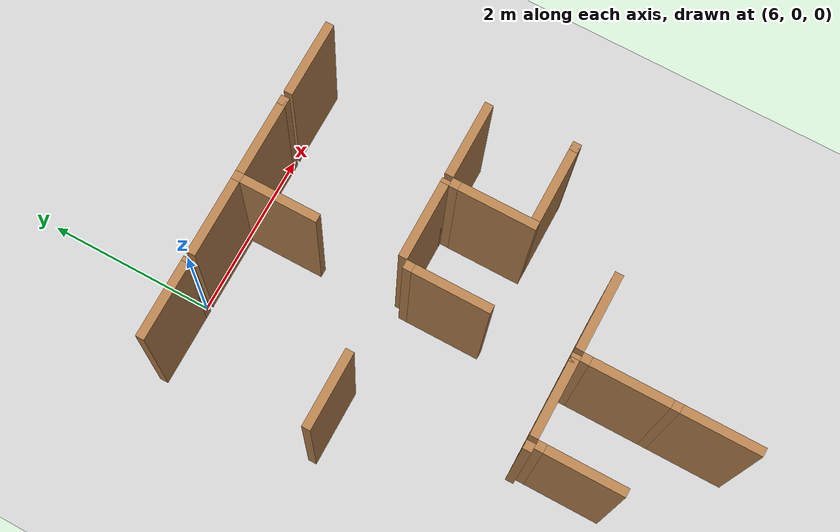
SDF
<sdf version="1.6">
 <world name="default">
  <include><uri>model://sun</uri></include>
  <model name="ground_plane">
   <static>true</static>
   <link name="link">
    <collision name="collision"><geometry><plane><size>12.0 12.0</size></plane></geometry></collision>
    <visual name="visual">
     <cast_shadows>false</cast_shadows>
     <geometry><plane><size>12.0 12.0</size></plane></geometry>
     <material>
      <script><uri>file://media/materials/scripts/gazebo.material</uri><name>Gazebo/Grey</name></script>
     </material>
    </visual>
   </link>
   <pose>6.0 -6.0 0 0 0 0</pose>
  </model>
  <model name="vwall_0_7">
   <pose>7.0 -0.5 1.0 0 0 0</pose>
   <link name="link">
    <collision name="collision"><geometry><box><size>0.1 0.9 2</size></box></geometry></collision>
    <visual name="visual">
     <geometry><box><size>0.1 0.9 2</size></box></geometry>
     <material>
      <script><uri>file://media/materials/scripts/gazebo.material</uri><name>Gazebo/Wood</name></script>
     </material>
    </visual>
   </link>
  </model>
  <model name="joint_7.0_0.0">
   <pose>7.0 0.0 1.0 0 0 0</pose>
   <link name="link">
    <collision name="collision"><geometry><box><size>0.1 0.1 2</size></box></geometry></collision>
    <visual name="visual">
     <geometry><box><size>0.1 0.1 2</size></box></geometry>
     <material>
      <script><uri>file://media/materials/scripts/gazebo.material</uri><name>Gazebo/Wood</name></script>
     </material>
    </visual>
   </link>
  </model>
  <model name="vwall_2_7">
   <pose>7.0 -2.5 1.0 0 0 0</pose>
   <link name="link">
    <collision name="collision"><geometry><box><size>0.1 0.9 2</size></box></geometry></collision>
    <visual name="visual">
     <geometry><box><size>0.1 0.9 2</size></box></geometry>
     <material>
      <script><uri>file://media/materials/scripts/gazebo.material</uri><name>Gazebo/Wood</name></script>
     </material>
    </visual>
   </link>
  </model>
  <model name="joint_7.0_-2.0">
   <pose>7.0 -2.0 1.0 0 0 0</pose>
   <link name="link">
    <collision name="collision"><geometry><box><size>0.1 0.1 2</size></box></geometry></collision>
    <visual name="visual">
     <geometry><box><size>0.1 0.1 2</size></box></geometry>
     <material>
      <script><uri>file://media/materials/scripts/gazebo.material</uri><name>Gazebo/Wood</name></script>
     </material>
    </visual>
   </link>
  </model>
  <model name="vwall_2_8">
   <pose>8.0 -2.5 1.0 0 0 0</pose>
   <link name="link">
    <collision name="collision"><geometry><box><size>0.1 0.9 2</size></box></geometry></collision>
    <visual name="visual">
     <geometry><box><size>0.1 0.9 2</size></box></geometry>
     <material>
      <script><uri>file://media/materials/scripts/gazebo.material</uri><name>Gazebo/Wood</name></script>
     </material>
    </visual>
   </link>
  </model>
  <model name="joint_8.0_-2.0">
   <pose>8.0 -2.0 1.0 0 0 0</pose>
   <link name="link">
    <collision name="collision"><geometry><box><size>0.1 0.1 2</size></box></geometry></collision>
    <visual name="visual">
     <geometry><box><size>0.1 0.1 2</size></box></geometry>
     <material>
      <script><uri>file://media/materials/scripts/gazebo.material</uri><name>Gazebo/Wood</name></script>
     </material>
    </visual>
   </link>
  </model>
  <model name="vwall_4_6">
   <pose>6.0 -4.5 1.0 0 0 0</pose>
   <link name="link">
    <collision name="collision"><geometry><box><size>0.1 0.9 2</size></box></geometry></collision>
    <visual name="visual">
     <geometry><box><size>0.1 0.9 2</size></box></geometry>
     <material>
      <script><uri>file://media/materials/scripts/gazebo.material</uri><name>Gazebo/Wood</name></script>
     </material>
    </visual>
   </link>
  </model>
  <model name="joint_6.0_-4.0">
   <pose>6.0 -4.0 1.0 0 0 0</pose>
   <link name="link">
    <collision name="collision"><geometry><box><size>0.1 0.1 2</size></box></geometry></collision>
    <visual name="visual">
     <geometry><box><size>0.1 0.1 2</size></box></geometry>
     <material>
      <script><uri>file://media/materials/scripts/gazebo.material</uri><name>Gazebo/Wood</name></script>
     </material>
    </visual>
   </link>
  </model>
  <model name="vwall_4_7">
   <pose>7.0 -4.5 1.0 0 0 0</pose>
   <link name="link">
    <collision name="collision"><geometry><box><size>0.1 0.9 2</size></box></geometry></collision>
    <visual name="visual">
     <geometry><box><size>0.1 0.9 2</size></box></geometry>
     <material>
      <script><uri>file://media/materials/scripts/gazebo.material</uri><name>Gazebo/Wood</name></script>
     </material>
    </visual>
   </link>
  </model>
  <model name="joint_7.0_-4.0">
   <pose>7.0 -4.0 1.0 0 0 0</pose>
   <link name="link">
    <collision name="collision"><geometry><box><size>0.1 0.1 2</size></box></geometry></collision>
    <visual name="visual">
     <geometry><box><size>0.1 0.1 2</size></box></geometry>
     <material>
      <script><uri>file://media/materials/scripts/gazebo.material</uri><name>Gazebo/Wood</name></script>
     </material>
    </visual>
   </link>
  </model>
  <model name="vwall_5_7">
   <pose>7.0 -5.5 1.0 0 0 0</pose>
   <link name="link">
    <collision name="collision"><geometry><box><size>0.1 0.9 2</size></box></geometry></collision>
    <visual name="visual">
     <geometry><box><size>0.1 0.9 2</size></box></geometry>
     <material>
      <script><uri>file://media/materials/scripts/gazebo.material</uri><name>Gazebo/Wood</name></script>
     </material>
    </visual>
   </link>
  </model>
  <model name="joint_7.0_-5.0">
   <pose>7.0 -5.0 1.0 0 0 0</pose>
   <link name="link">
    <collision name="collision"><geometry><box><size>0.1 0.1 2</size></box></geometry></collision>
    <visual name="visual">
     <geometry><box><size>0.1 0.1 2</size></box></geometry>
     <material>
      <script><uri>file://media/materials/scripts/gazebo.material</uri><name>Gazebo/Wood</name></script>
     </material>
    </visual>
   </link>
  </model>
  <model name="hwall_0_5">
   <pose>5.5 0.0 1.0 0 0 0</pose>
   <link name="link">
    <collision name="collision"><geometry><box><size>0.9 0.1 2</size></box></geometry></collision>
    <visual name="visual">
     <geometry><box><size>0.9 0.1 2</size></box></geometry>
     <material>
      <script><uri>file://media/materials/scripts/gazebo.material</uri><name>Gazebo/Wood</name></script>
     </material>
    </visual>
   </link>
  </model>
  <model name="joint_5.95_0.0">
   <pose>5.95 0.0 1.0 0 0 0</pose>
   <link name="link">
    <collision name="collision"><geometry><box><size>0.1 0.1 2</size></box></geometry></collision>
    <visual name="visual">
     <geometry><box><size>0.1 0.1 2</size></box></geometry>
     <material>
      <script><uri>file://media/materials/scripts/gazebo.material</uri><name>Gazebo/Wood</name></script>
     </material>
    </visual>
   </link>
  </model>
  <model name="hwall_0_6">
   <pose>6.5 0.0 1.0 0 0 0</pose>
   <link name="link">
    <collision name="collision"><geometry><box><size>0.9 0.1 2</size></box></geometry></collision>
    <visual name="visual">
     <geometry><box><size>0.9 0.1 2</size></box></geometry>
     <material>
      <script><uri>file://media/materials/scripts/gazebo.material</uri><name>Gazebo/Wood</name></script>
     </material>
    </visual>
   </link>
  </model>
  <model name="hwall_0_7">
   <pose>7.5 0.0 1.0 0 0 0</pose>
   <link name="link">
    <collision name="collision"><geometry><box><size>0.9 0.1 2</size></box></geometry></collision>
    <visual name="visual">
     <geometry><box><size>0.9 0.1 2</size></box></geometry>
     <material>
      <script><uri>file://media/materials/scripts/gazebo.material</uri><name>Gazebo/Wood</name></script>
     </material>
    </visual>
   </link>
  </model>
  <model name="joint_7.95_0.0">
   <pose>7.95 0.0 1.0 0 0 0</pose>
   <link name="link">
    <collision name="collision"><geometry><box><size>0.1 0.1 2</size></box></geometry></collision>
    <visual name="visual">
     <geometry><box><size>0.1 0.1 2</size></box></geometry>
     <material>
      <script><uri>file://media/materials/scripts/gazebo.material</uri><name>Gazebo/Wood</name></script>
     </material>
    </visual>
   </link>
  </model>
  <model name="hwall_0_8">
   <pose>8.5 0.0 1.0 0 0 0</pose>
   <link name="link">
    <collision name="collision"><geometry><box><size>0.9 0.1 2</size></box></geometry></collision>
    <visual name="visual">
     <geometry><box><size>0.9 0.1 2</size></box></geometry>
     <material>
      <script><uri>file://media/materials/scripts/gazebo.material</uri><name>Gazebo/Wood</name></script>
     </material>
    </visual>
   </link>
  </model>
  <model name="hwall_1_5">
   <pose>5.5 -1.9 1.0 0 0 0</pose>
   <link name="link">
    <collision name="collision"><geometry><box><size>0.9 0.1 2</size></box></geometry></collision>
    <visual name="visual">
     <geometry><box><size>0.9 0.1 2</size></box></geometry>
     <material>
      <script><uri>file://media/materials/scripts/gazebo.material</uri><name>Gazebo/Wood</name></script>
     </material>
    </visual>
   </link>
  </model>
  <model name="hwall_1_7">
   <pose>7.5 -1.9 1.0 0 0 0</pose>
   <link name="link">
    <collision name="collision"><geometry><box><size>0.9 0.1 2</size></box></geometry></collision>
    <visual name="visual">
     <geometry><box><size>0.9 0.1 2</size></box></geometry>
     <material>
      <script><uri>file://media/materials/scripts/gazebo.material</uri><name>Gazebo/Wood</name></script>
     </material>
    </visual>
   </link>
  </model>
  <model name="joint_7.95_-1.9">
   <pose>7.95 -1.9 1.0 0 0 0</pose>
   <link name="link">
    <collision name="collision"><geometry><box><size>0.1 0.1 2</size></box></geometry></collision>
    <visual name="visual">
     <geometry><box><size>0.1 0.1 2</size></box></geometry>
     <material>
      <script><uri>file://media/materials/scripts/gazebo.material</uri><name>Gazebo/Wood</name></script>
     </material>
    </visual>
   </link>
  </model>
  <model name="hwall_1_8">
   <pose>8.5 -1.9 1.0 0 0 0</pose>
   <link name="link">
    <collision name="collision"><geometry><box><size>0.9 0.1 2</size></box></geometry></collision>
    <visual name="visual">
     <geometry><box><size>0.9 0.1 2</size></box></geometry>
     <material>
      <script><uri>file://media/materials/scripts/gazebo.material</uri><name>Gazebo/Wood</name></script>
     </material>
    </visual>
   </link>
  </model>
  <model name="hwall_2_8">
   <pose>8.5 -2.9 1.0 0 0 0</pose>
   <link name="link">
    <collision name="collision"><geometry><box><size>0.9 0.1 2</size></box></geometry></collision>
    <visual name="visual">
     <geometry><box><size>0.9 0.1 2</size></box></geometry>
     <material>
      <script><uri>file://media/materials/scripts/gazebo.material</uri><name>Gazebo/Wood</name></script>
     </material>
    </visual>
   </link>
  </model>
  <model name="joint_8.95_-2.9">
   <pose>8.95 -2.9 1.0 0 0 0</pose>
   <link name="link">
    <collision name="collision"><geometry><box><size>0.1 0.1 2</size></box></geometry></collision>
    <visual name="visual">
     <geometry><box><size>0.1 0.1 2</size></box></geometry>
     <material>
      <script><uri>file://media/materials/scripts/gazebo.material</uri><name>Gazebo/Wood</name></script>
     </material>
    </visual>
   </link>
  </model>
  <model name="joint_5.95_-3.9">
   <pose>5.95 -3.9 1.0 0 0 0</pose>
   <link name="link">
    <collision name="collision"><geometry><box><size>0.1 0.1 2</size></box></geometry></collision>
    <visual name="visual">
     <geometry><box><size>0.1 0.1 2</size></box></geometry>
     <material>
      <script><uri>file://media/materials/scripts/gazebo.material</uri><name>Gazebo/Wood</name></script>
     </material>
    </visual>
   </link>
  </model>
  <model name="hwall_3_6">
   <pose>6.5 -3.9 1.0 0 0 0</pose>
   <link name="link">
    <collision name="collision"><geometry><box><size>0.9 0.1 2</size></box></geometry></collision>
    <visual name="visual">
     <geometry><box><size>0.9 0.1 2</size></box></geometry>
     <material>
      <script><uri>file://media/materials/scripts/gazebo.material</uri><name>Gazebo/Wood</name></script>
     </material>
    </visual>
   </link>
  </model>
  <model name="joint_6.95_-3.9">
   <pose>6.95 -3.9 1.0 0 0 0</pose>
   <link name="link">
    <collision name="collision"><geometry><box><size>0.1 0.1 2</size></box></geometry></collision>
    <visual name="visual">
     <geometry><box><size>0.1 0.1 2</size></box></geometry>
     <material>
      <script><uri>file://media/materials/scripts/gazebo.material</uri><name>Gazebo/Wood</name></script>
     </material>
    </visual>
   </link>
  </model>
  <model name="hwall_3_7">
   <pose>7.5 -3.9 1.0 0 0 0</pose>
   <link name="link">
    <collision name="collision"><geometry><box><size>0.9 0.1 2</size></box></geometry></collision>
    <visual name="visual">
     <geometry><box><size>0.9 0.1 2</size></box></geometry>
     <material>
      <script><uri>file://media/materials/scripts/gazebo.material</uri><name>Gazebo/Wood</name></script>
     </material>
    </visual>
   </link>
  </model>
 </world>
</sdf>
